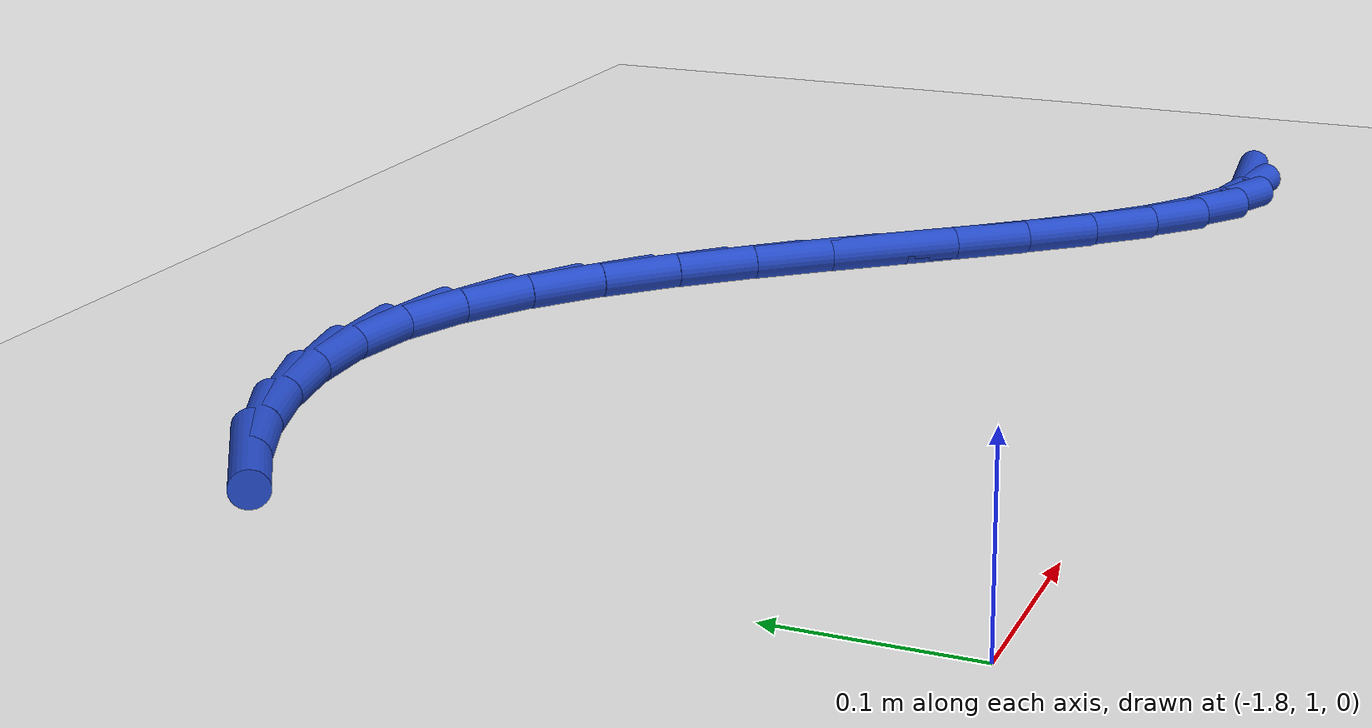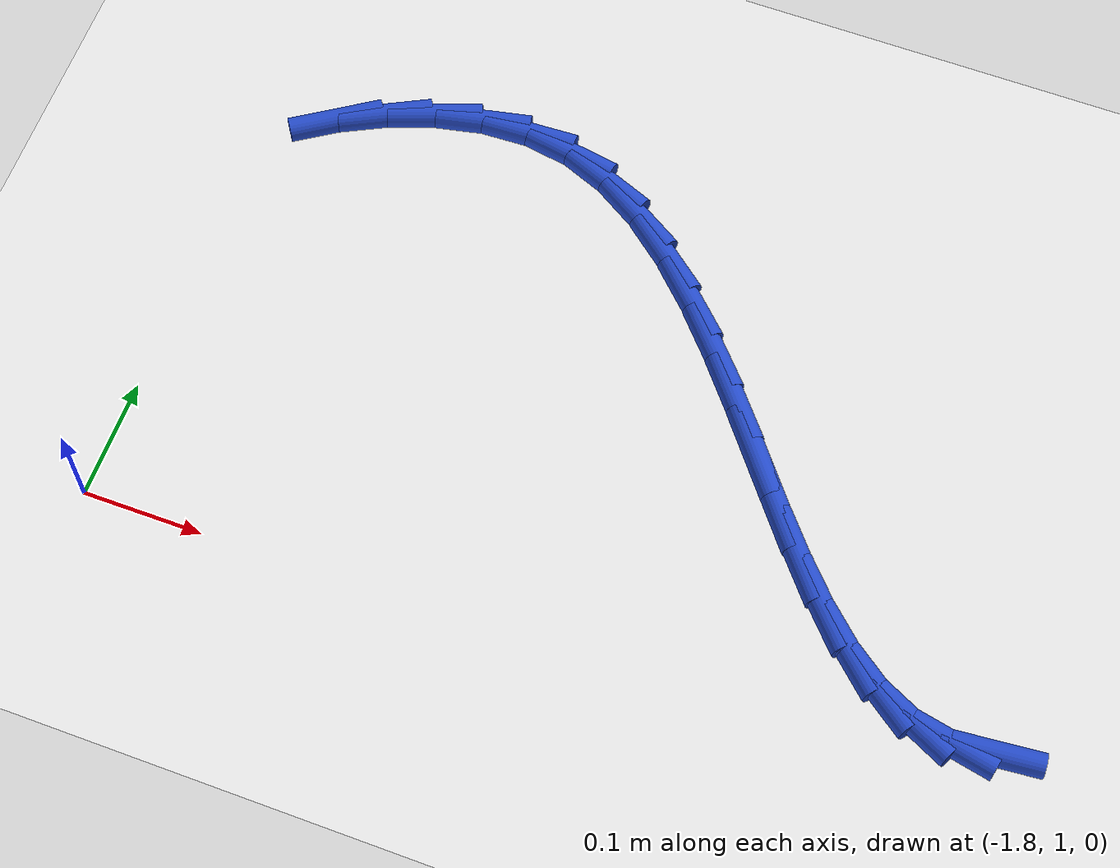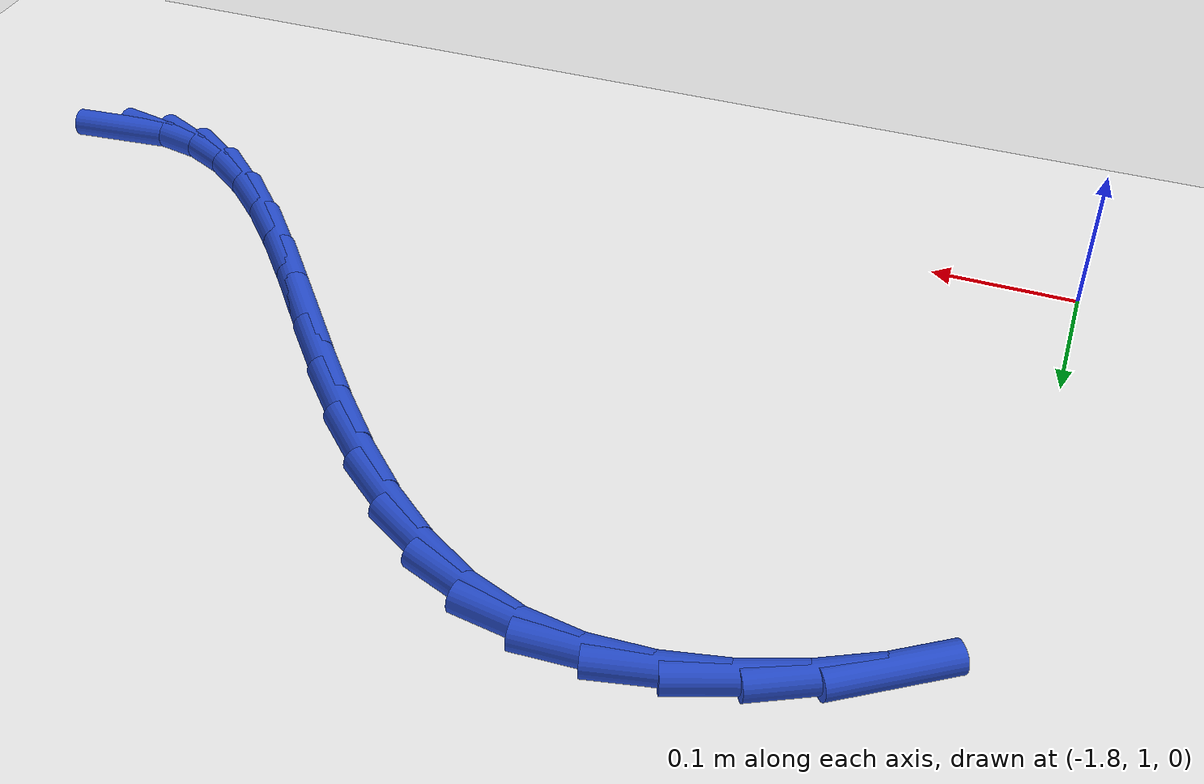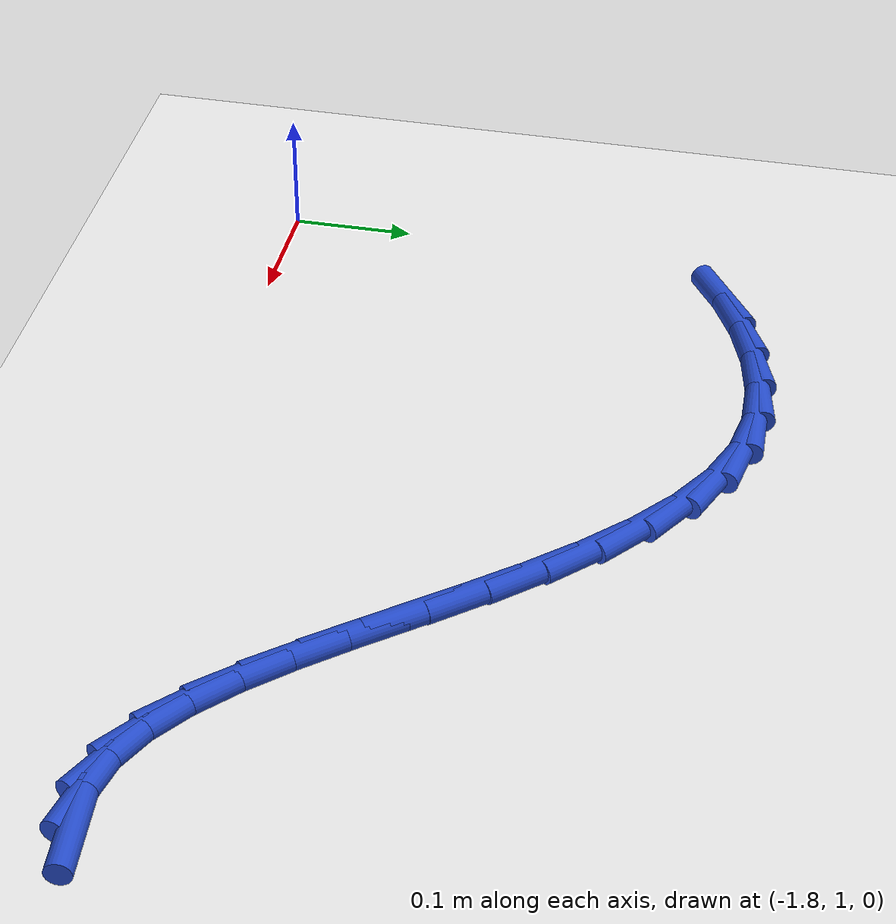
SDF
<sdf version="1.6">
 <world name="default">
  <model name="ground_plane">
   <static>1</static>
   <link name="link">
    <collision name="collision">
     <geometry><plane><normal>0 0 1</normal><size>100 100</size></plane></geometry>
     <surface><friction><ode><mu>100</mu><mu2>50</mu2></ode></friction></surface>
    </collision>
    <visual name="visual">
     <cast_shadows>0</cast_shadows>
     <geometry><plane><normal>0 0 1</normal><size>100 100</size></plane></geometry>
     <material>
      <script><uri>file://media/materials/scripts/gazebo.material</uri><name>Gazebo/WhiteGlow</name></script>
     </material>
    </visual>
   </link>
  </model>
  <model name="line">
   <link name="link_63">
    <pose>-1.0746060353433733 1.0394094089830614 0.01 0 1.57 0.09279475281359069</pose>
    <collision name="collision">
     <geometry><cylinder><radius>0.01</radius><length>0.08</length></cylinder></geometry>
    </collision>
    <visual name="visual">
     <material>
      <script><name>Gazebo/Blue</name><uri>file://media/materials/scripts/gazebo.material</uri></script>
     </material>
     <geometry><cylinder><radius>0.01</radius><length>0.08</length></cylinder></geometry>
    </visual>
   </link>
   <link name="link_64">
    <pose>-1.1073815626005357 1.0363592521723168 0.01 0 1.57 -0.20377198745137173</pose>
    <collision name="collision">
     <geometry><cylinder><radius>0.01</radius><length>0.08</length></cylinder></geometry>
    </collision>
    <visual name="visual">
     <material>
      <script><name>Gazebo/Blue</name><uri>file://media/materials/scripts/gazebo.material</uri></script>
     </material>
     <geometry><cylinder><radius>0.01</radius><length>0.08</length></cylinder></geometry>
    </visual>
   </link>
   <link name="link_65">
    <pose>-1.139010198397188 1.0428949948222401 0.01 0 1.57 -0.45027254967111524</pose>
    <collision name="collision">
     <geometry><cylinder><radius>0.01</radius><length>0.08</length></cylinder></geometry>
    </collision>
    <visual name="visual">
     <material>
      <script><name>Gazebo/Blue</name><uri>file://media/materials/scripts/gazebo.material</uri></script>
     </material>
     <geometry><cylinder><radius>0.01</radius><length>0.08</length></cylinder></geometry>
    </visual>
   </link>
   <link name="link_66">
    <pose>-1.1697157349771072 1.057737782743294 0.01 0 1.57 -0.629847561179597</pose>
    <collision name="collision">
     <geometry><cylinder><radius>0.01</radius><length>0.08</length></cylinder></geometry>
    </collision>
    <visual name="visual">
     <material>
      <script><name>Gazebo/Blue</name><uri>file://media/materials/scripts/gazebo.material</uri></script>
     </material>
     <geometry><cylinder><radius>0.01</radius><length>0.08</length></cylinder></geometry>
    </visual>
   </link>
   <link name="link_67">
    <pose>-1.199721964584069 1.0796087617459413 0.01 0 1.57 -0.7519834045007319</pose>
    <collision name="collision">
     <geometry><cylinder><radius>0.01</radius><length>0.08</length></cylinder></geometry>
    </collision>
    <visual name="visual">
     <material>
      <script><name>Gazebo/Blue</name><uri>file://media/materials/scripts/gazebo.material</uri></script>
     </material>
     <geometry><cylinder><radius>0.01</radius><length>0.08</length></cylinder></geometry>
    </visual>
   </link>
   <link name="link_68">
    <pose>-1.2292526794618501 1.1072290776406442 0.01 0 1.57 -0.8311835748317734</pose>
    <collision name="collision">
     <geometry><cylinder><radius>0.01</radius><length>0.08</length></cylinder></geometry>
    </collision>
    <visual name="visual">
     <material>
      <script><name>Gazebo/Blue</name><uri>file://media/materials/scripts/gazebo.material</uri></script>
     </material>
     <geometry><cylinder><radius>0.01</radius><length>0.08</length></cylinder></geometry>
    </visual>
   </link>
   <link name="link_69">
    <pose>-1.2585316718542263 1.139319876237865 0.01 0 1.57 -0.8785884627608861</pose>
    <collision name="collision">
     <geometry><cylinder><radius>0.01</radius><length>0.08</length></cylinder></geometry>
    </collision>
    <visual name="visual">
     <material>
      <script><name>Gazebo/Blue</name><uri>file://media/materials/scripts/gazebo.material</uri></script>
     </material>
     <geometry><cylinder><radius>0.01</radius><length>0.08</length></cylinder></geometry>
    </visual>
   </link>
   <link name="link_70">
    <pose>-1.2877827340049741 1.1746023033480661 0.01 0 1.57 -0.901145431860354</pose>
    <collision name="collision">
     <geometry><cylinder><radius>0.01</radius><length>0.08</length></cylinder></geometry>
    </collision>
    <visual name="visual">
     <material>
      <script><name>Gazebo/Blue</name><uri>file://media/materials/scripts/gazebo.material</uri></script>
     </material>
     <geometry><cylinder><radius>0.01</radius><length>0.08</length></cylinder></geometry>
    </visual>
   </link>
   <link name="link_71">
    <pose>-1.3172296581578695 1.2117975047817104 0.01 0 1.57 -0.9024827673888898</pose>
    <collision name="collision">
     <geometry><cylinder><radius>0.01</radius><length>0.08</length></cylinder></geometry>
    </collision>
    <visual name="visual">
     <material>
      <script><name>Gazebo/Blue</name><uri>file://media/materials/scripts/gazebo.material</uri></script>
     </material>
     <geometry><cylinder><radius>0.01</radius><length>0.08</length></cylinder></geometry>
    </visual>
   </link>
   <link name="link_72">
    <pose>-1.347096236556689 1.2496266263492606 0.01 0 1.57 -0.8836733652518334</pose>
    <collision name="collision">
     <geometry><cylinder><radius>0.01</radius><length>0.08</length></cylinder></geometry>
    </collision>
    <visual name="visual">
     <material>
      <script><name>Gazebo/Blue</name><uri>file://media/materials/scripts/gazebo.material</uri></script>
     </material>
     <geometry><cylinder><radius>0.01</radius><length>0.08</length></cylinder></geometry>
    </visual>
   </link>
   <link name="link_73">
    <pose>-1.3776062614452085 1.2868108138611778 0.01 0 1.57 -0.8436047259654775</pose>
    <collision name="collision">
     <geometry><cylinder><radius>0.01</radius><length>0.08</length></cylinder></geometry>
    </collision>
    <visual name="visual">
     <material>
      <script><name>Gazebo/Blue</name><uri>file://media/materials/scripts/gazebo.material</uri></script>
     </material>
     <geometry><cylinder><radius>0.01</radius><length>0.08</length></cylinder></geometry>
    </visual>
   </link>
   <link name="link_74">
    <pose>-1.4089835250672047 1.3220712131279255 0.01 0 1.57 -0.7790358923647409</pose>
    <collision name="collision">
     <geometry><cylinder><radius>0.01</radius><length>0.08</length></cylinder></geometry>
    </collision>
    <visual name="visual">
     <material>
      <script><name>Gazebo/Blue</name><uri>file://media/materials/scripts/gazebo.material</uri></script>
     </material>
     <geometry><cylinder><radius>0.01</radius><length>0.08</length></cylinder></geometry>
    </visual>
   </link>
   <link name="link_75">
    <pose>-1.4414518196664534 1.3541289699599663 0.01 0 1.57 -0.6845852755766088</pose>
    <collision name="collision">
     <geometry><cylinder><radius>0.01</radius><length>0.08</length></cylinder></geometry>
    </collision>
    <visual name="visual">
     <material>
      <script><name>Gazebo/Blue</name><uri>file://media/materials/scripts/gazebo.material</uri></script>
     </material>
     <geometry><cylinder><radius>0.01</radius><length>0.08</length></cylinder></geometry>
    </visual>
   </link>
   <link name="link_76">
    <pose>-1.475234937486732 1.3817052301677628 0.01 0 1.57 -0.5532849950577404</pose>
    <collision name="collision">
     <geometry><cylinder><radius>0.01</radius><length>0.08</length></cylinder></geometry>
    </collision>
    <visual name="visual">
     <material>
      <script><name>Gazebo/Blue</name><uri>file://media/materials/scripts/gazebo.material</uri></script>
     </material>
     <geometry><cylinder><radius>0.01</radius><length>0.08</length></cylinder></geometry>
    </visual>
   </link>
   <link name="link_77">
    <pose>-1.5105566707718152 1.4035211395617768 0.01 0 1.57 -0.3791817531269696</pose>
    <collision name="collision">
     <geometry><cylinder><radius>0.01</radius><length>0.08</length></cylinder></geometry>
    </collision>
    <visual name="visual">
     <material>
      <script><name>Gazebo/Blue</name><uri>file://media/materials/scripts/gazebo.material</uri></script>
     </material>
     <geometry><cylinder><radius>0.01</radius><length>0.08</length></cylinder></geometry>
    </visual>
   </link>
   <link name="link_78">
    <pose>-1.54764081176548 1.4182978439524705 0.01 0 1.57 -0.1655571798216257</pose>
    <collision name="collision">
     <geometry><cylinder><radius>0.01</radius><length>0.08</length></cylinder></geometry>
    </collision>
    <visual name="visual">
     <material>
      <script><name>Gazebo/Blue</name><uri>file://media/materials/scripts/gazebo.material</uri></script>
     </material>
     <geometry><cylinder><radius>0.01</radius><length>0.08</length></cylinder></geometry>
    </visual>
   </link>
   <link name="link_79">
    <pose>-1.5866728506023555 1.4248195724649755 0.01 0 1.57 0.041620329727861935</pose>
    <collision name="collision">
     <geometry><cylinder><radius>0.01</radius><length>0.08</length></cylinder></geometry>
    </collision>
    <visual name="visual">
     <material>
      <script><name>Gazebo/Blue</name><uri>file://media/materials/scripts/gazebo.material</uri></script>
     </material>
     <geometry><cylinder><radius>0.01</radius><length>0.08</length></cylinder></geometry>
    </visual>
   </link>
   <link name="link_80">
    <pose>-1.6270691551093681 1.4231372934624404 0.01 0 1.57 0.21090526527328898</pose>
    <collision name="collision">
     <geometry><cylinder><radius>0.01</radius><length>0.08</length></cylinder></geometry>
    </collision>
    <visual name="visual">
     <material>
      <script><name>Gazebo/Blue</name><uri>file://media/materials/scripts/gazebo.material</uri></script>
     </material>
     <geometry><cylinder><radius>0.01</radius><length>0.08</length></cylinder></geometry>
    </visual>
   </link>
   <link name="link_81">
    <pose>-1.6675344001051189 1.4144741288784382 0.01 0 1.57 0.35142322046466395</pose>
    <collision name="collision">
     <geometry><cylinder><radius>0.01</radius><length>0.08</length></cylinder></geometry>
    </collision>
    <visual name="visual">
     <material>
      <script><name>Gazebo/Blue</name><uri>file://media/materials/scripts/gazebo.material</uri></script>
     </material>
     <geometry><cylinder><radius>0.01</radius><length>0.08</length></cylinder></geometry>
    </visual>
   </link>
   <link name="link_82">
    <pose>-1.7067464658470601 1.4000973311075005 0.01 0 1.57 0.4746094546529808</pose>
    <collision name="collision">
     <geometry><cylinder><radius>0.01</radius><length>0.08</length></cylinder></geometry>
    </collision>
    <visual name="visual">
     <material>
      <script><name>Gazebo/Blue</name><uri>file://media/materials/scripts/gazebo.material</uri></script>
     </material>
     <geometry><cylinder><radius>0.01</radius><length>0.08</length></cylinder></geometry>
    </visual>
   </link>
   <link name="link_83">
    <pose>-1.7433832325926457 1.3812741525441619 0.01 0 1.57 0.5917147439178143</pose>
    <collision name="collision">
     <geometry><cylinder><radius>0.01</radius><length>0.08</length></cylinder></geometry>
    </collision>
    <visual name="visual">
     <material>
      <script><name>Gazebo/Blue</name><uri>file://media/materials/scripts/gazebo.material</uri></script>
     </material>
     <geometry><cylinder><radius>0.01</radius><length>0.08</length></cylinder></geometry>
    </visual>
   </link>
  </model>
 </world>
</sdf>
